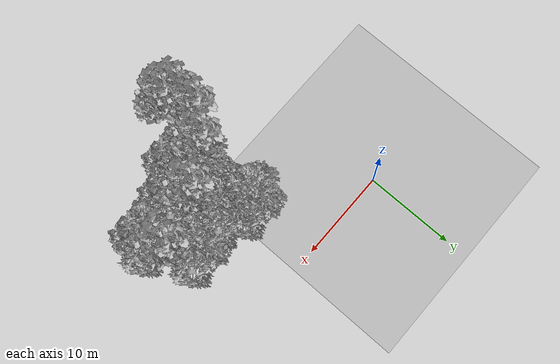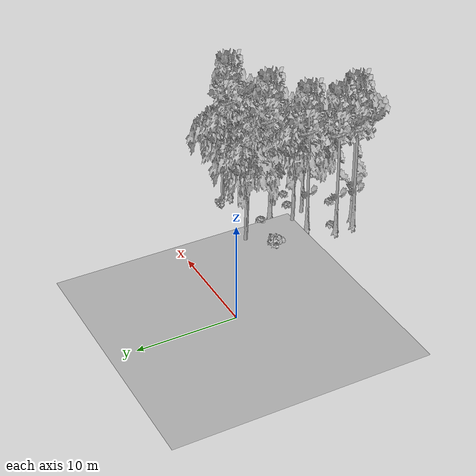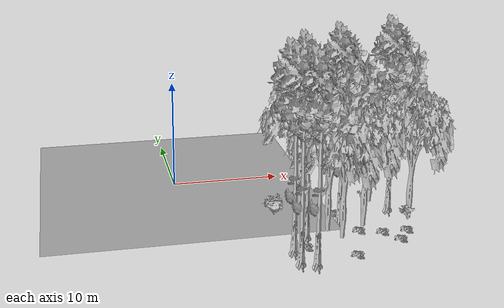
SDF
<sdf version="1.7">
 <world name="default">
  <model name="ground_plane">
   <static>1</static>
   <link name="link">
    <collision name="collision">
     <pose>-50 0 0 0 -0 0</pose>
     <geometry><plane><normal>0 0 1</normal><size>80 80</size></plane></geometry>
     <surface><contact><ode><min_depth>0.01</min_depth><max_vel>0</max_vel></ode></contact></surface>
    </collision>
    <visual name="grass">
     <cast_shadows>0</cast_shadows>
     <geometry>
      <mesh>
       <scale>0.46714285714285714 0.46714285714285714 0.1</scale>
       <uri>file://grass_plane/meshes/grass_plane.dae</uri>
      </mesh>
     </geometry>
    </visual>
   </link>
  </model>
  <model name="Tree 49">
   <static>1</static>
   <pose>18.14145185257452 -8.94248721823707 0 1.57079 -0 0</pose>
   <link name="link">
    <collision name="collision">
     <geometry><mesh><scale>3.5 5 3.5</scale><uri>model://tree_9/meshes/tree_9.obj</uri></mesh></geometry>
    </collision>
    <visual name="visual">
     <geometry><mesh><scale>3.5 5 3.5</scale><uri>model://tree_9/meshes/tree_9.obj</uri></mesh></geometry>
    </visual>
   </link>
  </model>
  <model name="Tree 57">
   <static>1</static>
   <pose>10.482872020806475 -6.683001811823253 0 1.57079 -0 0</pose>
   <link name="link">
    <collision name="collision">
     <geometry><mesh><scale>3.5 5 3.5</scale><uri>model://tree_2/meshes/tree_2.obj</uri></mesh></geometry>
    </collision>
    <visual name="visual">
     <geometry><mesh><scale>3.5 5 3.5</scale><uri>model://tree_2/meshes/tree_2.obj</uri></mesh></geometry>
    </visual>
   </link>
  </model>
  <model name="Tree 119">
   <static>1</static>
   <pose>16.847087288387712 -7.384472210237625 0 1.57079 -0 0</pose>
   <link name="link">
    <collision name="collision">
     <geometry><mesh><scale>3.5 5 3.5</scale><uri>model://tree_2/meshes/tree_2.obj</uri></mesh></geometry>
    </collision>
    <visual name="visual">
     <geometry><mesh><scale>3.5 5 3.5</scale><uri>model://tree_2/meshes/tree_2.obj</uri></mesh></geometry>
    </visual>
   </link>
  </model>
  <model name="Tree 142">
   <static>1</static>
   <pose>7.65174787056106 -15.31596269676017 0 1.57079 -0 0</pose>
   <link name="link">
    <collision name="collision">
     <geometry><mesh><scale>3.5 5 3.5</scale><uri>model://tree_9/meshes/tree_9.obj</uri></mesh></geometry>
    </collision>
    <visual name="visual">
     <geometry><mesh><scale>3.5 5 3.5</scale><uri>model://tree_9/meshes/tree_9.obj</uri></mesh></geometry>
    </visual>
   </link>
  </model>
  <model name="Tree 215">
   <static>1</static>
   <pose>7.676160916259285 -17.361329683603692 0 1.57079 -0 0</pose>
   <link name="link">
    <collision name="collision">
     <geometry><mesh><scale>3.5 5 3.5</scale><uri>model://tree_9/meshes/tree_9.obj</uri></mesh></geometry>
    </collision>
    <visual name="visual">
     <geometry><mesh><scale>3.5 5 3.5</scale><uri>model://tree_9/meshes/tree_9.obj</uri></mesh></geometry>
    </visual>
   </link>
  </model>
  <model name="Tree 230">
   <static>1</static>
   <pose>11.297536339584148 -12.503761765517652 0 1.57079 -0 0</pose>
   <link name="link">
    <collision name="collision">
     <geometry><mesh><scale>3.5 5 3.5</scale><uri>model://tree_2/meshes/tree_2.obj</uri></mesh></geometry>
    </collision>
    <visual name="visual">
     <geometry><mesh><scale>3.5 5 3.5</scale><uri>model://tree_2/meshes/tree_2.obj</uri></mesh></geometry>
    </visual>
   </link>
  </model>
  <model name="Tree 253">
   <static>1</static>
   <pose>8.854770900668917 -17.916041046701395 0 1.57079 -0 0</pose>
   <link name="link">
    <collision name="collision">
     <geometry><mesh><scale>3.5 5 3.5</scale><uri>model://tree_9/meshes/tree_9.obj</uri></mesh></geometry>
    </collision>
    <visual name="visual">
     <geometry><mesh><scale>3.5 5 3.5</scale><uri>model://tree_9/meshes/tree_9.obj</uri></mesh></geometry>
    </visual>
   </link>
  </model>
  <model name="Tree 284">
   <static>1</static>
   <pose>19.006007538436023 -11.439292552728688 0 1.57079 -0 0</pose>
   <link name="link">
    <collision name="collision">
     <geometry><mesh><scale>3.5 5 3.5</scale><uri>model://tree_2/meshes/tree_2.obj</uri></mesh></geometry>
    </collision>
    <visual name="visual">
     <geometry><mesh><scale>3.5 5 3.5</scale><uri>model://tree_2/meshes/tree_2.obj</uri></mesh></geometry>
    </visual>
   </link>
  </model>
  <model name="Tree 306">
   <static>1</static>
   <pose>9.368881167621183 -12.98728805799632 0 1.57079 -0 0</pose>
   <link name="link">
    <collision name="collision">
     <geometry><mesh><scale>3.5 5 3.5</scale><uri>model://tree_9/meshes/tree_9.obj</uri></mesh></geometry>
    </collision>
    <visual name="visual">
     <geometry><mesh><scale>3.5 5 3.5</scale><uri>model://tree_9/meshes/tree_9.obj</uri></mesh></geometry>
    </visual>
   </link>
  </model>
  <model name="Tree 504">
   <static>1</static>
   <pose>12.74392654194726 -7.980223703874302 0 1.57079 -0 0</pose>
   <link name="link">
    <collision name="collision">
     <geometry><mesh><scale>3.5 5 3.5</scale><uri>model://tree_2/meshes/tree_2.obj</uri></mesh></geometry>
    </collision>
    <visual name="visual">
     <geometry><mesh><scale>3.5 5 3.5</scale><uri>model://tree_2/meshes/tree_2.obj</uri></mesh></geometry>
    </visual>
   </link>
  </model>
  <model name="Tree 529">
   <static>1</static>
   <pose>12.099898423739873 -14.02284333364613 0 1.57079 -0 0</pose>
   <link name="link">
    <collision name="collision">
     <geometry><mesh><scale>3.5 5 3.5</scale><uri>model://tree_2/meshes/tree_2.obj</uri></mesh></geometry>
    </collision>
    <visual name="visual">
     <geometry><mesh><scale>3.5 5 3.5</scale><uri>model://tree_2/meshes/tree_2.obj</uri></mesh></geometry>
    </visual>
   </link>
  </model>
  <model name="Tree 597">
   <static>1</static>
   <pose>14.573387978879381 -12.18244233202281 0 1.57079 -0 0</pose>
   <link name="link">
    <collision name="collision">
     <geometry><mesh><scale>3.5 5 3.5</scale><uri>model://tree_2/meshes/tree_2.obj</uri></mesh></geometry>
    </collision>
    <visual name="visual">
     <geometry><mesh><scale>3.5 5 3.5</scale><uri>model://tree_2/meshes/tree_2.obj</uri></mesh></geometry>
    </visual>
   </link>
  </model>
  <model name="Tree 599">
   <static>1</static>
   <pose>12.991410394899724 -10.746542962619792 0 1.57079 -0 0</pose>
   <link name="link">
    <collision name="collision">
     <geometry><mesh><scale>3.5 5 3.5</scale><uri>model://tree_9/meshes/tree_9.obj</uri></mesh></geometry>
    </collision>
    <visual name="visual">
     <geometry><mesh><scale>3.5 5 3.5</scale><uri>model://tree_9/meshes/tree_9.obj</uri></mesh></geometry>
    </visual>
   </link>
  </model>
  <model name="Bush 16">
   <static>1</static>
   <pose>8.679473509054802 -15.447109368296399 0 1.57079 -0 0</pose>
   <link name="link">
    <collision name="collision">
     <geometry><mesh><scale>2 2 2</scale><uri>model://bush_2/meshes/bush_2.obj</uri></mesh></geometry>
     <surface><contact><collide_without_contact>false</collide_without_contact></contact></surface>
    </collision>
    <visual name="visual">
     <geometry><mesh><scale>2 2 2</scale><uri>model://bush_2/meshes/bush_2.obj</uri></mesh></geometry>
    </visual>
   </link>
  </model>
  <model name="Bush 32">
   <static>1</static>
   <pose>15.772791425314388 -13.96345388832519 0 1.57079 -0 0</pose>
   <link name="link">
    <collision name="collision">
     <geometry><mesh><scale>2 2 2</scale><uri>model://bush_2/meshes/bush_2.obj</uri></mesh></geometry>
     <surface><contact><collide_without_contact>false</collide_without_contact></contact></surface>
    </collision>
    <visual name="visual">
     <geometry><mesh><scale>2 2 2</scale><uri>model://bush_2/meshes/bush_2.obj</uri></mesh></geometry>
    </visual>
   </link>
  </model>
  <model name="Bush 106">
   <static>1</static>
   <pose>13.883408650258588 -13.334035698825069 0 1.57079 -0 0</pose>
   <link name="link">
    <collision name="collision">
     <geometry><mesh><scale>2 2 2</scale><uri>model://bush_2/meshes/bush_2.obj</uri></mesh></geometry>
     <surface><contact><collide_without_contact>false</collide_without_contact></contact></surface>
    </collision>
    <visual name="visual">
     <geometry><mesh><scale>2 2 2</scale><uri>model://bush_2/meshes/bush_2.obj</uri></mesh></geometry>
    </visual>
   </link>
  </model>
  <model name="Bush 134">
   <static>1</static>
   <pose>12.348833442084661 -17.503848906365775 0 1.57079 -0 0</pose>
   <link name="link">
    <collision name="collision">
     <geometry><mesh><scale>2 2 2</scale><uri>model://bush_2/meshes/bush_2.obj</uri></mesh></geometry>
     <surface><contact><collide_without_contact>false</collide_without_contact></contact></surface>
    </collision>
    <visual name="visual">
     <geometry><mesh><scale>2 2 2</scale><uri>model://bush_2/meshes/bush_2.obj</uri></mesh></geometry>
    </visual>
   </link>
  </model>
  <model name="Bush 160">
   <static>1</static>
   <pose>12.731216163101095 -9.584640966966738 0 1.57079 -0 0</pose>
   <link name="link">
    <collision name="collision">
     <geometry><mesh><scale>2 2 2</scale><uri>model://bush_2/meshes/bush_2.obj</uri></mesh></geometry>
     <surface><contact><collide_without_contact>false</collide_without_contact></contact></surface>
    </collision>
    <visual name="visual">
     <geometry><mesh><scale>2 2 2</scale><uri>model://bush_2/meshes/bush_2.obj</uri></mesh></geometry>
    </visual>
   </link>
  </model>
  <model name="Bush 383">
   <static>1</static>
   <pose>16.814847297172363 -15.457992984773004 0 1.57079 -0 0</pose>
   <link name="link">
    <collision name="collision">
     <geometry><mesh><scale>2 2 2</scale><uri>model://bush_2/meshes/bush_2.obj</uri></mesh></geometry>
     <surface><contact><collide_without_contact>false</collide_without_contact></contact></surface>
    </collision>
    <visual name="visual">
     <geometry><mesh><scale>2 2 2</scale><uri>model://bush_2/meshes/bush_2.obj</uri></mesh></geometry>
    </visual>
   </link>
  </model>
  <model name="Bush 389">
   <static>1</static>
   <pose>17.925975942515343 -13.952993322421861 0 1.57079 -0 0</pose>
   <link name="link">
    <collision name="collision">
     <geometry><mesh><scale>2 2 2</scale><uri>model://bush_2/meshes/bush_2.obj</uri></mesh></geometry>
     <surface><contact><collide_without_contact>false</collide_without_contact></contact></surface>
    </collision>
    <visual name="visual">
     <geometry><mesh><scale>2 2 2</scale><uri>model://bush_2/meshes/bush_2.obj</uri></mesh></geometry>
    </visual>
   </link>
  </model>
  <model name="Bush 465">
   <static>1</static>
   <pose>16.684194582589043 -7.072433575613118 0 1.57079 -0 0</pose>
   <link name="link">
    <collision name="collision">
     <geometry><mesh><scale>2 2 2</scale><uri>model://bush_4/meshes/bush_4.obj</uri></mesh></geometry>
     <surface><contact><collide_without_contact>false</collide_without_contact></contact></surface>
    </collision>
    <visual name="visual">
     <geometry><mesh><scale>2 2 2</scale><uri>model://bush_4/meshes/bush_4.obj</uri></mesh></geometry>
    </visual>
   </link>
  </model>
  <model name="Bush 566">
   <static>1</static>
   <pose>7.687943667464012 -8.586235937108853 0 1.57079 -0 0</pose>
   <link name="link">
    <collision name="collision">
     <geometry><mesh><scale>2 2 2</scale><uri>model://bush_1/meshes/bush_1.obj</uri></mesh></geometry>
     <surface><contact><collide_without_contact>false</collide_without_contact></contact></surface>
    </collision>
    <visual name="visual">
     <geometry><mesh><scale>2 2 2</scale><uri>model://bush_1/meshes/bush_1.obj</uri></mesh></geometry>
    </visual>
   </link>
  </model>
  <model name="Bush 567">
   <static>1</static>
   <pose>18.850499135973628 -11.807352581062478 0 1.57079 -0 0</pose>
   <link name="link">
    <collision name="collision">
     <geometry><mesh><scale>2 2 2</scale><uri>model://bush_0/meshes/bush_0.obj</uri></mesh></geometry>
     <surface><contact><collide_without_contact>false</collide_without_contact></contact></surface>
    </collision>
    <visual name="visual">
     <geometry><mesh><scale>2 2 2</scale><uri>model://bush_0/meshes/bush_0.obj</uri></mesh></geometry>
    </visual>
   </link>
  </model>
 </world>
</sdf>
